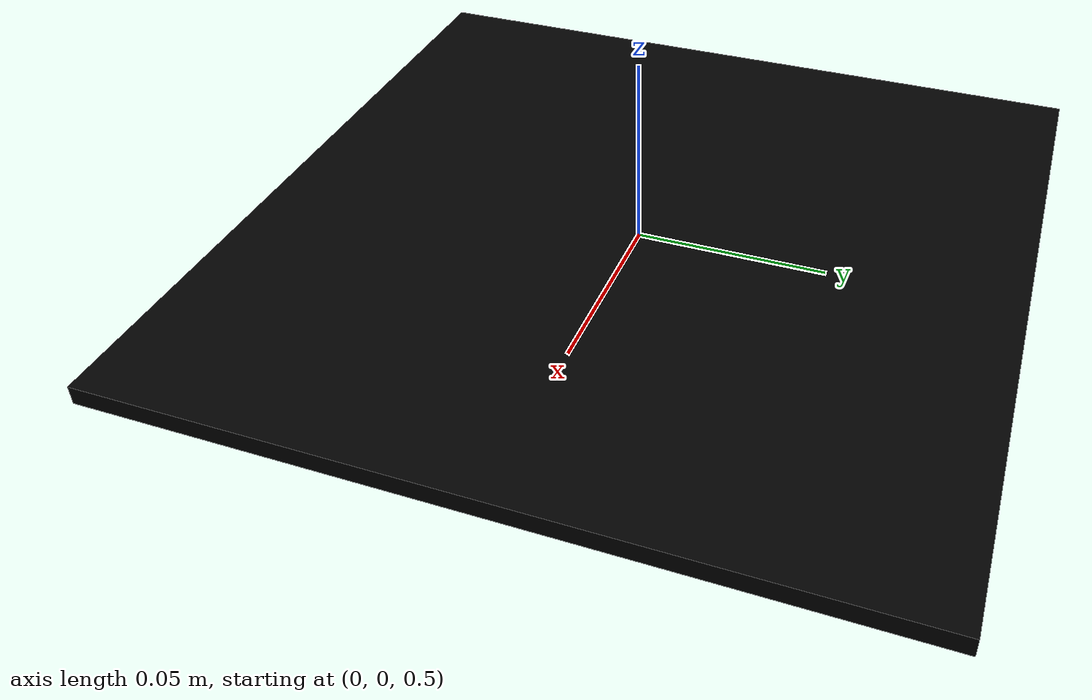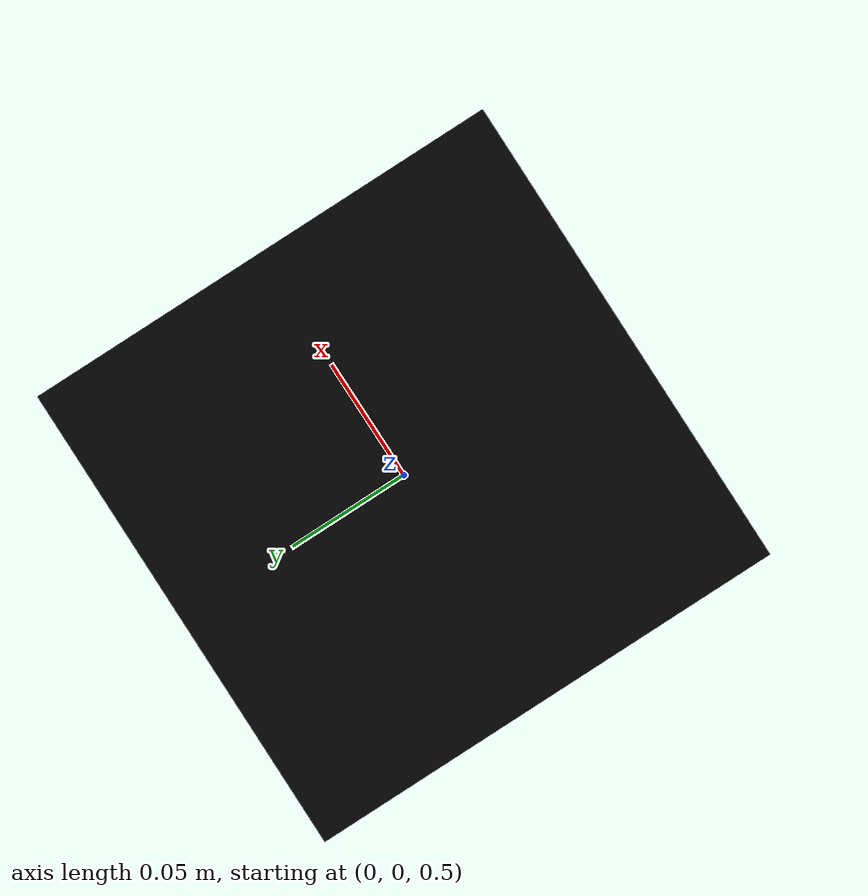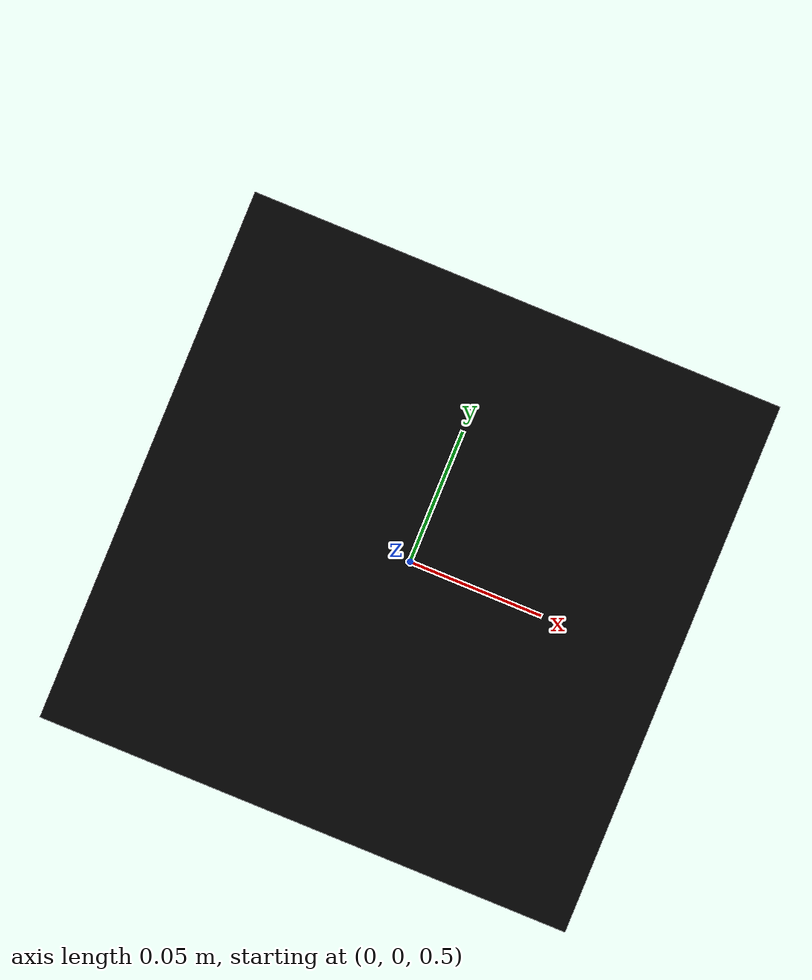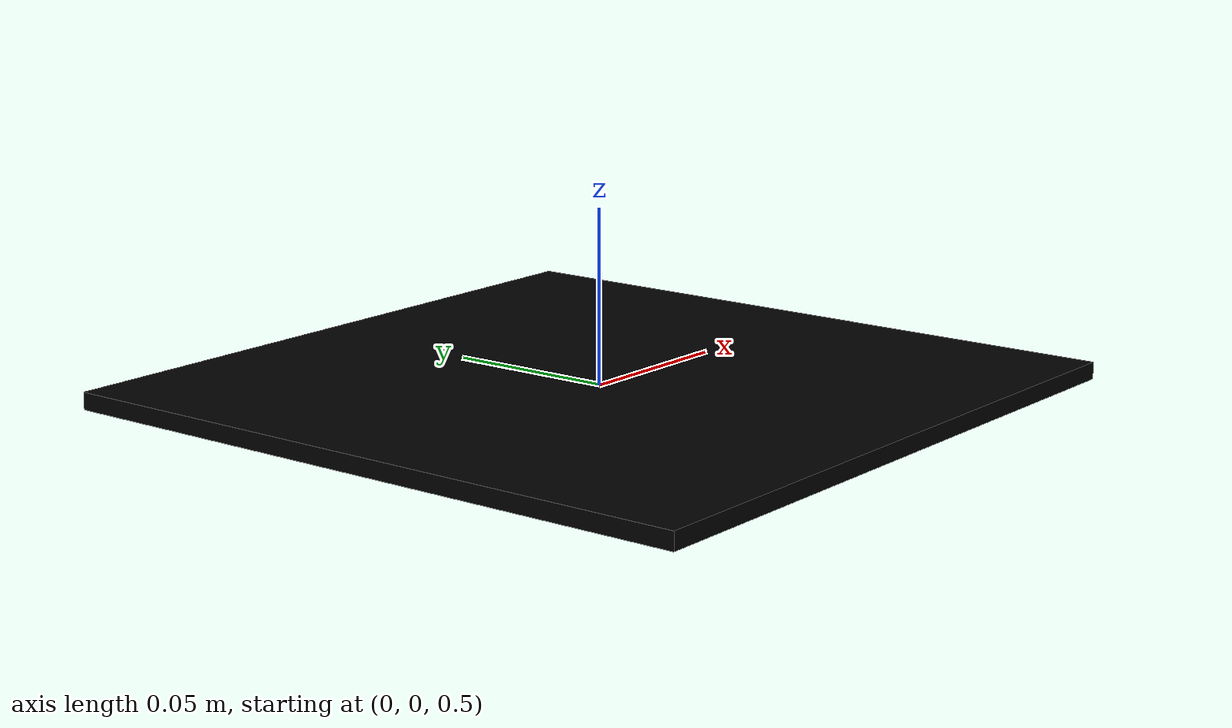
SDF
<?xml version='1.0'?>
<sdf version="1.4">
<model name="box">
  <pose>0 0 0.5 0 0 0</pose>
  <static>true</static>
    <link name="link">
      <inertial>
        <mass>1.0</mass>
        <inertia> <!-- interias are tricky to compute -->
          <!-- http://answers.gazebosim.org/question/4372/the-inertia-matrix-explained/ -->
          <ixx>0.083</ixx>       <!-- for a box: ixx = 0.083 * mass * (y*y + z*z) -->
          <ixy>0.0</ixy>         <!-- for a box: ixy = 0 -->
          <ixz>0.0</ixz>         <!-- for a box: ixz = 0 -->
          <iyy>0.083</iyy>       <!-- for a box: iyy = 0.083 * mass * (x*x + z*z) -->
          <iyz>0.0</iyz>         <!-- for a box: iyz = 0 -->
          <izz>0.083</izz>       <!-- for a box: izz = 0.083 * mass * (x*x + y*y) -->
        </inertia>
      </inertial>
      <collision name="collision">
        <geometry>
          <box>
            <size>0.2 0.2 0.005</size>
          </box>
        </geometry>
      </collision>
      <visual name="visual">
        <geometry>
          <box>
            <size>0.2 0.2 0.005</size>
          </box>
        </geometry>
	<material>
          <ambient>0 0 0 1</ambient>
          <diffuse>0 0 0 1</diffuse>
          <specular>0.1 0.1 0.1 1</specular>
          <emissive>0 0 0 0</emissive>
        </material>
      </visual>
    </link>
  </model>
</sdf>
